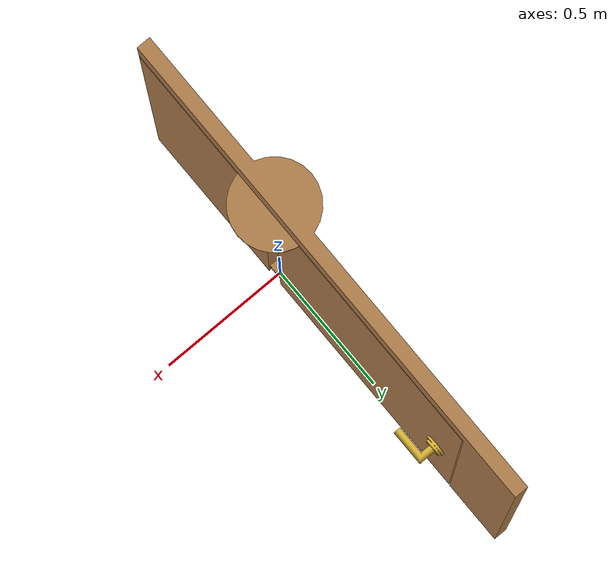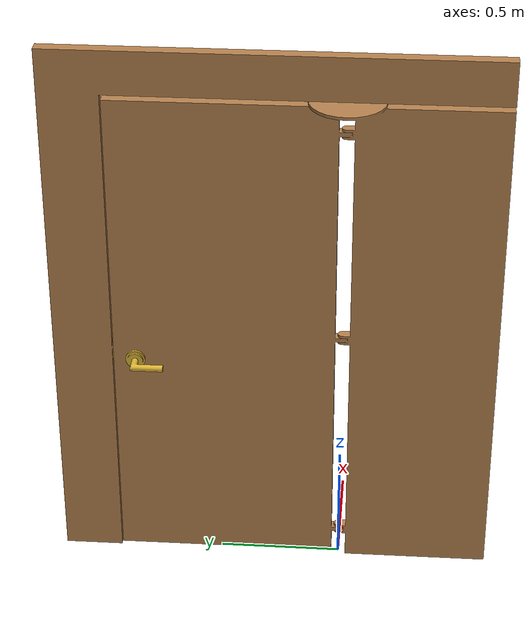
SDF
<?xml version='1.0'?>
<sdf version='1.4'>
  <model name="door_simple">
    <self_collide>true</self_collide>
    <static>false</static>
    <pose>0 0 0 0 0 0</pose>

    <link name="frame">

      <inertial>
        <mass>100.0</mass>
        <inertia>
          <ixx>0.013102127690</ixx>   <ixy>-0.000000514790</ixy>    <ixz>0.000000965200</ixz>
                                      <iyy>0.017339000240</iyy>     <iyz>-0.000017996010</iyz>
                                                                    <izz>0.004334337460</izz>
        </inertia>
      </inertial>

      <collision name="frame_collision">
        <geometry>
          <mesh>
            <uri>model://door_simple/meshes/frame.stl</uri>
          </mesh>
        </geometry>
      </collision>

      <visual name="frame_visual">
        <geometry>
          <mesh>
            <uri>model://door_simple/meshes/frame.stl</uri>
          </mesh>
        </geometry>
        <material>
          <script>
            <uri>file://media/materials/scripts/gazebo.material</uri>
            <name>Gazebo/WoodPallet</name>
          </script>
        </material>
      </visual>

    </link>

    <link name="door">

      <inertial>
        <mass>10.0</mass>
        <inertia>
          <ixx>0.030386862790</ixx>   <ixy>-0.000000000330</ixy>    <ixz>0.000000216760</ixz>
                                      <iyy>0.035534743650</iyy>     <iyz>-0.000000000060</iyz>
                                                                    <izz>0.005184277950</izz>
        </inertia>
      </inertial>

      <collision name="door_collision">
        <geometry>
          <mesh>
            <uri>model://door_simple/meshes/door.stl</uri>
          </mesh>
        </geometry>
      </collision>

      <visual name="door_visual">
        <geometry>
          <mesh>
            <uri>model://door_simple/meshes/door.stl</uri>
          </mesh>
        </geometry>
        <material>
          <script>
            <uri>file://media/materials/scripts/gazebo.material</uri>
            <name>Gazebo/Wood</name>
          </script>
        </material>
      </visual>

    </link>

    <link name="lever">
      <pose> 0 0.84 0.9552 0 -1.5708 0</pose>
      <inertial>
        <mass>1.0</mass>
        <inertia>
          <ixx>0.001</ixx>   <ixy>0.00</ixy>      <ixz>0.00</ixz>
                             <iyy>0.001</iyy>     <iyz>0.00</iyz>
                                                  <izz>0.001</izz>
        </inertia>
      </inertial>

      <collision name="lever_collision">
        <geometry>
          <mesh>
            <uri>model://door_simple/meshes/lever.stl</uri>
          </mesh>
        </geometry>
      </collision>

      <visual name="lever_visual">
        <geometry>
          <mesh>
            <uri>model://door_simple/meshes/lever.stl</uri>
          </mesh>
        </geometry>
        <material>
          <script>
            <uri>file://media/materials/scripts/gazebo.material</uri>
            <name>Gazebo/Gold</name>
          </script>
        </material>
      </visual>

    </link>

    <joint type="fixed" name="joint_world_frame">
      <pose>0 0 0 0 0 0</pose>
      <parent>world</parent>
      <child>frame</child>
      <physics>
        <ode>
          <implicit_spring_damper>1</implicit_spring_damper>
        </ode>
      </physics>
    </joint>

    <joint type="revolute" name="joint_frame_door">
      <pose>0 0 0 0 0 0</pose>
      <parent>frame</parent>
      <child>door</child>
      <axis>
        <xyz>0 0 1</xyz>
        <!--  self-closing hinge -->
        <limit>
          <lower>-0.03</lower>
          <upper>1.57</upper>
        </limit>
      </axis>
      <physics>
        <ode>
          <implicit_spring_damper>1</implicit_spring_damper>
        </ode>
      </physics>
    </joint>

    <joint type="revolute" name="joint_door_lever">
      <pose>0 0 0 0 0 0</pose>
      <parent>door</parent>
      <child>lever</child>
      <axis>
        <xyz>1 0 0</xyz>
        <dynamics>
          <damping>0.5</damping>
          <friction>0.01</friction>
          <spring_reference>0.0</spring_reference>
          <spring_stiffness>3</spring_stiffness>
        </dynamics>
        <limit>
          <lower>0.0</lower>
          <upper>0.6</upper>
        </limit>
      </axis>
      <physics>
        <ode>
          <implicit_spring_damper>1</implicit_spring_damper>
        </ode>
      </physics>
    </joint>
  <plugin name="simple_door_config" filename="libsimple_door_config.so"/>
  </model>
</sdf>
